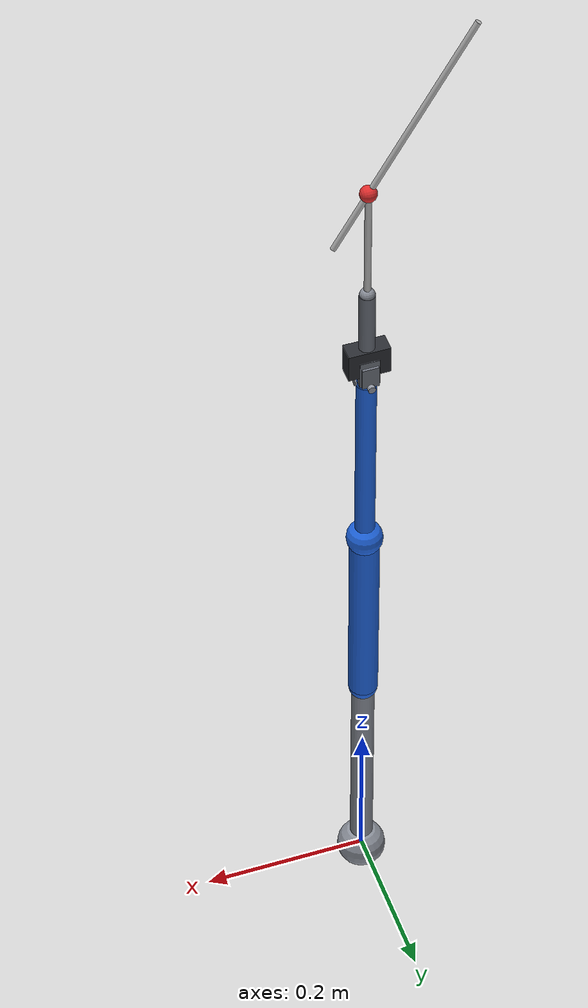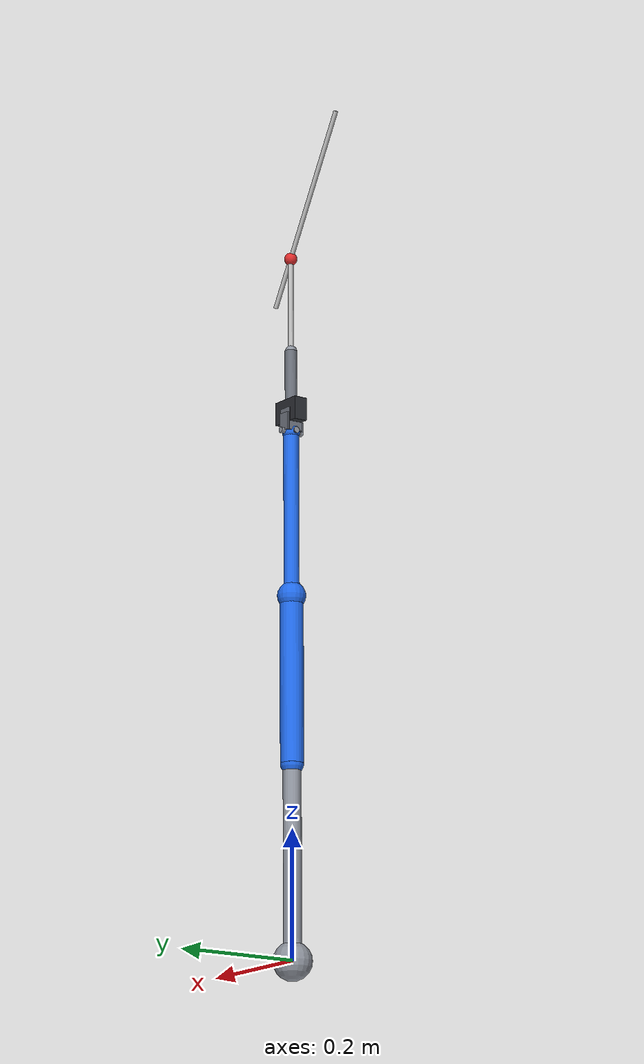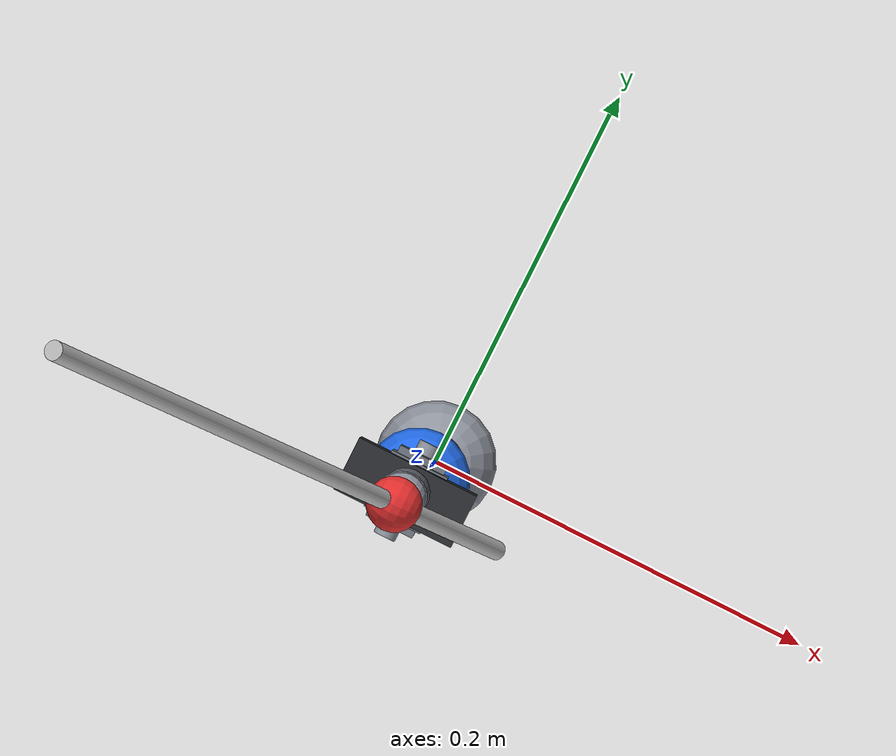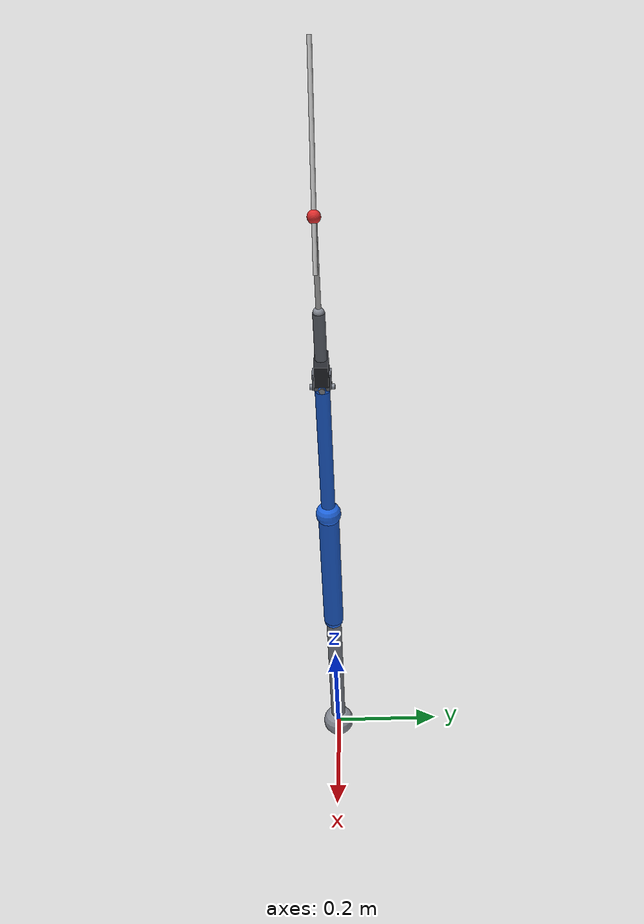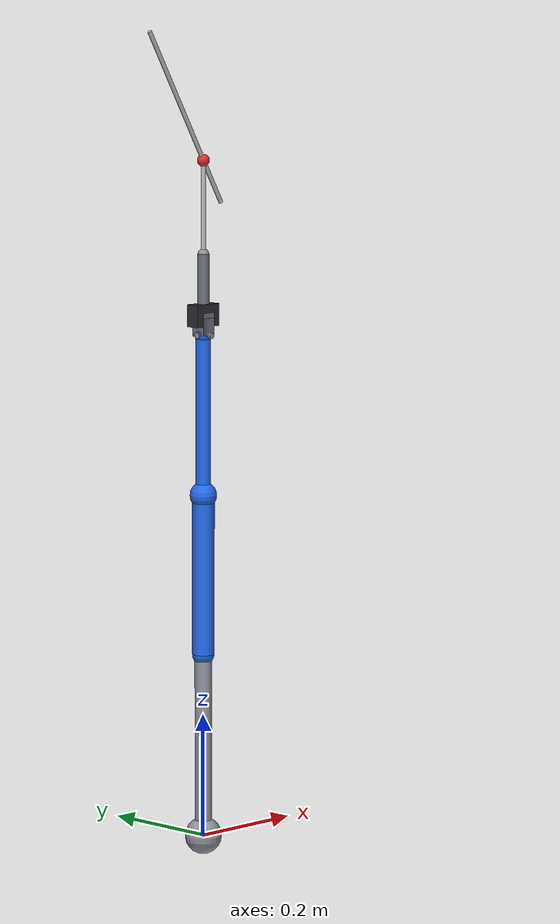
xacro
<?xml version="1.0"?>
<robot
  name="rcm_final_model_proportional_end_modeled_link"
  xmlns:xacro="http://www.ros.org/wiki/xacro"
>
  <xacro:property name="tool_clamp_sleeve_length" value="0.10"/>
  <xacro:property name="tool_clamp_sleeve_start_y" value="-0.03"/>
  <xacro:property name="tool_clamp_sleeve_half_length" value="${tool_clamp_sleeve_length / 2.0}"/>
  <xacro:property name="tool_clamp_sleeve_center_y" value="${tool_clamp_sleeve_start_y - tool_clamp_sleeve_half_length}"/>
  <xacro:property name="tool_clamp_front_y" value="${tool_clamp_sleeve_start_y - tool_clamp_sleeve_length}"/>
  <xacro:property name="tool_clamp_inertial_y" value="-0.05"/>
  <xacro:property name="tool_inner_length" value="0.28"/>
  <xacro:property name="tool_inner_radius" value="0.004"/>
  <xacro:property name="tool_inner_mass" value="0.15"/>
  <xacro:property name="tool_inner_half_length" value="${tool_inner_length / 2.0}"/>
  <xacro:property name="tool_inner_tip_y" value="${-tool_inner_length}"/>
  <xacro:property
    name="tool_inner_inertia_trans"
    value="${tool_inner_mass * (3.0 * tool_inner_radius * tool_inner_radius + tool_inner_length * tool_inner_length) / 12.0}"
  />
  <xacro:property
    name="tool_inner_inertia_axial"
    value="${0.5 * tool_inner_mass * tool_inner_radius * tool_inner_radius}"
  />
  <xacro:property name="modeled_link_length" value="0.32"/>
  <xacro:property name="modeled_link_radius" value="0.0035"/>
  <xacro:property name="modeled_link_pitch_deg" value="30.0"/>
  <xacro:property name="modeled_link_pitch_rad" value="${modeled_link_pitch_deg * 3.141592653589793 / 180.0}"/>
  <xacro:property name="modeled_link_connection_ratio" value="0.25"/>
  <xacro:property name="modeled_link_mass" value="0.03"/>
  <xacro:property name="modeled_link_half_length" value="${modeled_link_length / 2.0}"/>
  <xacro:property name="modeled_link_center_y" value="${(modeled_link_connection_ratio - 0.5) * modeled_link_length}"/>
  <xacro:property name="modeled_link_tip_y" value="${-(1.0 - modeled_link_connection_ratio) * modeled_link_length}"/>
  <xacro:property
    name="modeled_link_inertia_trans"
    value="${modeled_link_mass * (3.0 * modeled_link_radius * modeled_link_radius + modeled_link_length * modeled_link_length) / 12.0}"
  />
  <xacro:property
    name="modeled_link_inertia_axial"
    value="${0.5 * modeled_link_mass * modeled_link_radius * modeled_link_radius}"
  />
  <!--
    Because the local tool axis is aligned with -Y, the visible pitch offset is
    implemented as a fixed-joint rotation about the child X axis.
  -->
  <material name="robot_blue">
    <color rgba="0.13 0.42 0.92 1.0"/>
  </material>
  <material name="joint_gray">
    <color rgba="0.56 0.58 0.62 1.0"/>
  </material>
  <material name="sleeve_gray">
    <color rgba="0.42 0.44 0.48 1.0"/>
  </material>
  <material name="tool_gray">
    <color rgba="0.74 0.74 0.74 1.0"/>
  </material>
  <material name="clamp_black">
    <color rgba="0.16 0.17 0.19 1.0"/>
  </material>
  <material name="tip_red">
    <color rgba="0.88 0.18 0.18 1.0"/>
  </material>

  <link name="base_link">
    <inertial>
      <origin xyz="0 0 0" rpy="0 0 0"/>
      <mass value="0.35"/>
      <inertia ixx="0.00018" ixy="0.0" ixz="0.0" iyy="0.00018" iyz="0.0" izz="0.00018"/>
    </inertial>
    <visual>
      <origin xyz="0 0 0" rpy="0 0 0"/>
      <geometry>
        <sphere radius="0.03"/>
      </geometry>
      <material name="joint_gray"/>
    </visual>
    <collision>
      <origin xyz="0 0 0" rpy="0 0 0"/>
      <geometry>
        <sphere radius="0.03"/>
      </geometry>
    </collision>
  </link>

  <joint name="q1" type="revolute">
    <parent link="base_link"/>
    <child link="pedestal_link"/>
    <origin xyz="0 0 0" rpy="0 0 0"/>
    <axis xyz="0 0 1"/>
    <limit lower="-3.14159" upper="3.14159" effort="8.0" velocity="3.0"/>
    <dynamics damping="0.10" friction="0.02"/>
  </joint>

  <link name="pedestal_link">
    <inertial>
      <origin xyz="0 0 0.15" rpy="0 0 0"/>
      <mass value="0.45"/>
      <inertia ixx="0.00045" ixy="0.0" ixz="0.0" iyy="0.00045" iyz="0.0" izz="0.00004"/>
    </inertial>
    <visual>
      <origin xyz="0 0 0.15" rpy="0 0 0"/>
      <geometry>
        <cylinder radius="0.014" length="0.30"/>
      </geometry>
      <material name="joint_gray"/>
    </visual>
    <visual>
      <origin xyz="0 0 0.30" rpy="0 0 0"/>
      <geometry>
        <sphere radius="0.018"/>
      </geometry>
      <material name="robot_blue"/>
    </visual>
    <collision>
      <origin xyz="0 0 0.15" rpy="0 0 0"/>
      <geometry>
        <cylinder radius="0.014" length="0.30"/>
      </geometry>
    </collision>
  </link>

  <joint name="q2" type="revolute">
    <parent link="pedestal_link"/>
    <child link="upper_arm_link"/>
    <origin xyz="0 0 0.30" rpy="0 0 0"/>
    <axis xyz="1 0 0"/>
    <limit lower="-1.91986" upper="1.91986" effort="8.0" velocity="3.0"/>
    <dynamics damping="0.10" friction="0.02"/>
  </joint>

  <link name="upper_arm_link">
    <inertial>
      <origin xyz="0 0 0.13" rpy="0 0 0"/>
      <mass value="0.80"/>
      <inertia ixx="0.00250" ixy="0.0" ixz="0.0" iyy="0.00250" iyz="0.0" izz="0.00008"/>
    </inertial>
    <visual>
      <origin xyz="0 0 0.13" rpy="0 0 0"/>
      <geometry>
        <cylinder radius="0.018" length="0.26"/>
      </geometry>
      <material name="robot_blue"/>
    </visual>
    <visual>
      <origin xyz="0 0 0.26" rpy="0 0 0"/>
      <geometry>
        <sphere radius="0.022"/>
      </geometry>
      <material name="robot_blue"/>
    </visual>
    <collision>
      <origin xyz="0 0 0.13" rpy="0 0 0"/>
      <geometry>
        <cylinder radius="0.018" length="0.26"/>
      </geometry>
    </collision>
  </link>

  <joint name="q3" type="revolute">
    <parent link="upper_arm_link"/>
    <child link="forearm_link"/>
    <origin xyz="0 0 0.26" rpy="0 0 0"/>
    <axis xyz="1 0 0"/>
    <limit lower="-2.44346" upper="2.44346" effort="6.0" velocity="3.0"/>
    <dynamics damping="0.08" friction="0.02"/>
  </joint>

  <link name="forearm_link">
    <inertial>
      <origin xyz="0 0 0.13" rpy="0 0 0"/>
      <mass value="0.45"/>
      <inertia ixx="0.00055" ixy="0.0" ixz="0.0" iyy="0.00055" iyz="0.0" izz="0.00002"/>
    </inertial>
    <visual>
      <origin xyz="0 0 0.13" rpy="0 0 0"/>
      <geometry>
        <cylinder radius="0.012" length="0.26"/>
      </geometry>
      <material name="robot_blue"/>
    </visual>
    <visual>
      <origin xyz="0 0 0.26" rpy="0 0 0"/>
      <geometry>
        <sphere radius="0.014"/>
      </geometry>
      <material name="robot_blue"/>
    </visual>
    <collision>
      <origin xyz="0 0 0.13" rpy="0 0 0"/>
      <geometry>
        <cylinder radius="0.012" length="0.26"/>
      </geometry>
    </collision>
  </link>

  <link name="tool_local_link">
    <inertial>
      <origin xyz="0 0 0" rpy="0 0 0"/>
      <mass value="0.005"/>
      <inertia ixx="0.000001" ixy="0.0" ixz="0.0" iyy="0.000001" iyz="0.0" izz="0.000001"/>
    </inertial>
  </link>

  <joint name="tool_local_mount" type="fixed">
    <parent link="forearm_link"/>
    <child link="tool_local_link"/>
    <origin xyz="0 0 0.26" rpy="-1.57079632679 0 -1.57079632679"/>
  </joint>

  <link name="tool_yaw_link">
    <inertial>
      <origin xyz="0 -0.010 0" rpy="0 0 0"/>
      <mass value="0.030"/>
      <inertia ixx="0.000010" ixy="0.0" ixz="0.0" iyy="0.000010" iyz="0.0" izz="0.000008"/>
    </inertial>
    <visual>
      <origin xyz="0 0 0" rpy="0 0 0"/>
      <geometry>
        <cylinder radius="0.005" length="0.03"/>
      </geometry>
      <material name="joint_gray"/>
    </visual>
    <visual>
      <origin xyz="0 -0.014 0" rpy="0 0 0"/>
      <geometry>
        <box size="0.030 0.028 0.020"/>
      </geometry>
      <material name="sleeve_gray"/>
    </visual>
    <collision>
      <origin xyz="0 -0.014 0" rpy="0 0 0"/>
      <geometry>
        <box size="0.030 0.028 0.020"/>
      </geometry>
    </collision>
  </link>

  <joint name="tool_yaw" type="revolute">
    <parent link="tool_local_link"/>
    <child link="tool_yaw_link"/>
    <origin xyz="0 0 0" rpy="0 0 0"/>
    <axis xyz="0 0 1"/>
    <limit lower="-3.14159" upper="3.14159" effort="0.5" velocity="0.8"/>
    <dynamics damping="0.35" friction="0.18"/>
  </joint>

  <link name="tool_pitch_link">
    <inertial>
      <origin xyz="0 -0.018 0" rpy="0 0 0"/>
      <mass value="0.040"/>
      <inertia ixx="0.000014" ixy="0.0" ixz="0.0" iyy="0.000012" iyz="0.0" izz="0.000010"/>
    </inertial>
    <visual>
      <origin xyz="0 0 0" rpy="0 1.57079632679 0"/>
      <geometry>
        <cylinder radius="0.0045" length="0.04"/>
      </geometry>
      <material name="joint_gray"/>
    </visual>
    <visual>
      <origin xyz="0 -0.018 0" rpy="0 0 0"/>
      <geometry>
        <box size="0.024 0.036 0.024"/>
      </geometry>
      <material name="sleeve_gray"/>
    </visual>
    <collision>
      <origin xyz="0 -0.018 0" rpy="0 0 0"/>
      <geometry>
        <box size="0.024 0.036 0.024"/>
      </geometry>
    </collision>
  </link>

  <joint name="tool_pitch" type="revolute">
    <parent link="tool_yaw_link"/>
    <child link="tool_pitch_link"/>
    <origin xyz="0 0 0" rpy="0 0 0"/>
    <axis xyz="-1 0 0"/>
    <limit lower="-1.57080" upper="1.57080" effort="0.5" velocity="0.8"/>
    <dynamics damping="0.35" friction="0.18"/>
  </joint>

  <link name="tool_clamp_link">
    <inertial>
      <origin xyz="0 ${tool_clamp_inertial_y} 0" rpy="0 0 0"/>
      <mass value="0.100"/>
      <inertia ixx="0.00021" ixy="0.0" ixz="0.0" iyy="0.00021" iyz="0.0" izz="0.00002"/>
    </inertial>
    <visual>
      <origin xyz="0 -0.032 0" rpy="0 0 0"/>
      <geometry>
        <box size="0.022 0.036 0.050"/>
      </geometry>
      <material name="clamp_black"/>
    </visual>
    <visual>
      <origin xyz="0 ${tool_clamp_sleeve_center_y} 0" rpy="1.57079632679 0 0"/>
      <geometry>
        <cylinder radius="0.0095" length="${tool_clamp_sleeve_length}"/>
      </geometry>
      <material name="sleeve_gray"/>
    </visual>
    <visual>
      <origin xyz="0 ${tool_clamp_front_y} 0" rpy="0 0 0"/>
      <geometry>
        <sphere radius="0.009"/>
      </geometry>
      <material name="joint_gray"/>
    </visual>
    <collision>
      <origin xyz="0 -0.032 0" rpy="0 0 0"/>
      <geometry>
        <box size="0.022 0.036 0.050"/>
      </geometry>
    </collision>
    <collision>
      <origin xyz="0 ${tool_clamp_sleeve_center_y} 0" rpy="1.57079632679 0 0"/>
      <geometry>
        <cylinder radius="0.0095" length="${tool_clamp_sleeve_length}"/>
      </geometry>
    </collision>
  </link>

  <joint name="tool_pitch_mount" type="fixed">
    <parent link="tool_pitch_link"/>
    <child link="tool_clamp_link"/>
    <origin xyz="0 0 0" rpy="0 0 0"/>
  </joint>

  <joint name="tool_fixed_mount" type="fixed">
    <parent link="tool_clamp_link"/>
    <child link="tool_inner_link"/>
    <origin xyz="0 0 0" rpy="0 0 0"/>
  </joint>

  <link name="tool_inner_link">
    <inertial>
      <origin xyz="0 ${-tool_inner_half_length} 0" rpy="0 0 0"/>
      <mass value="${tool_inner_mass}"/>
      <inertia
        ixx="${tool_inner_inertia_trans}"
        ixy="0.0"
        ixz="0.0"
        iyy="${tool_inner_inertia_axial}"
        iyz="0.0"
        izz="${tool_inner_inertia_trans}"
      />
    </inertial>
    <visual>
      <origin xyz="0 ${-tool_inner_half_length} 0" rpy="1.57079632679 0 0"/>
      <geometry>
        <cylinder radius="${tool_inner_radius}" length="${tool_inner_length}"/>
      </geometry>
      <material name="tool_gray"/>
    </visual>
    <visual>
      <origin xyz="0 ${tool_inner_tip_y} 0" rpy="0 0 0"/>
      <geometry>
        <sphere radius="0.010"/>
      </geometry>
      <material name="tip_red"/>
    </visual>
    <collision>
      <origin xyz="0 ${-tool_inner_half_length} 0" rpy="1.57079632679 0 0"/>
      <geometry>
        <cylinder radius="${tool_inner_radius}" length="${tool_inner_length}"/>
      </geometry>
    </collision>
  </link>

  <joint name="tool_modeled_link_mount" type="fixed">
    <parent link="tool_inner_link"/>
    <child link="tool_modeled_link"/>
    <origin xyz="0 ${tool_inner_tip_y} 0" rpy="${modeled_link_pitch_rad} 0 0"/>
  </joint>

  <link name="tool_modeled_link">
    <inertial>
      <origin xyz="0 ${modeled_link_center_y} 0" rpy="0 0 0"/>
      <mass value="${modeled_link_mass}"/>
      <inertia
        ixx="${modeled_link_inertia_trans}"
        ixy="0.0"
        ixz="0.0"
        iyy="${modeled_link_inertia_axial}"
        iyz="0.0"
        izz="${modeled_link_inertia_trans}"
      />
    </inertial>
    <visual>
      <origin xyz="0 ${modeled_link_center_y} 0" rpy="1.57079632679 0 0"/>
      <geometry>
        <cylinder radius="${modeled_link_radius}" length="${modeled_link_length}"/>
      </geometry>
      <material name="tool_gray"/>
    </visual>
    <collision>
      <origin xyz="0 ${modeled_link_center_y} 0" rpy="1.57079632679 0 0"/>
      <geometry>
        <cylinder radius="${modeled_link_radius}" length="${modeled_link_length}"/>
      </geometry>
    </collision>
  </link>
</robot>
